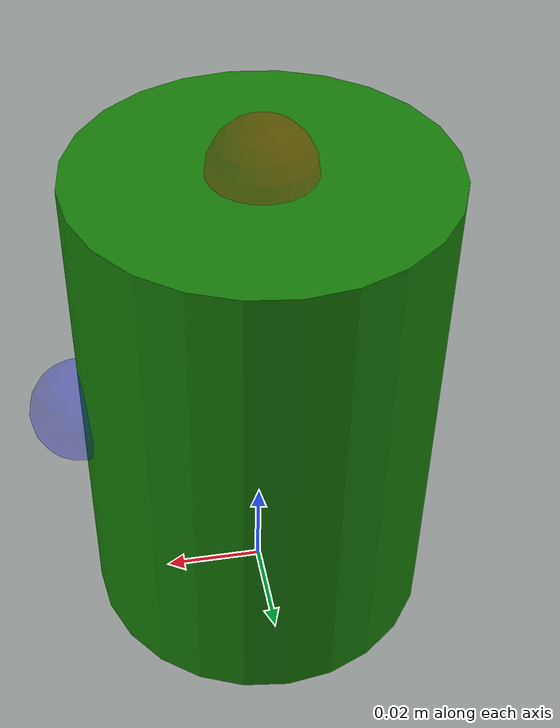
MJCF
<mujoco model="green_cup">
  <default>
    <default class="visual">
      <geom group="1" contype="0" conaffinity="0" density="100"/>
    </default>
    <default class="collision">
      <geom group="0" density="100" solimp="0.95 0.98 0.001" solref="0.004 1" rgba="1 1 1 0.25"/>
    </default>
    <default class="spawn">
      <geom group="1" rgba="1 1 1 0" contype="0" conaffinity="0" density="0" mass="0"/>
    </default>
  </default>
  <asset>
    <texture name="green_tex" builtin="flat" rgb1="0.3 0.7 0.2" rgb2="0.3 0.7 0.2" width="32" height="32"/>
    <material name="green_mat" texture="green_tex" shininess="0.3" reflectance="0.1" rgba="0.3 0.7 0.2 1"/>
  </asset>
  <worldbody>
    <body>
      <body name="object">
        <!-- Cup body: cylinder r=0.035m, h=0.10m -->
        <geom class="collision" name="cup_body" type="cylinder" size="0.035 0.05" pos="0 0 0.05"/>
        <geom class="visual" name="cup_body_vis" type="cylinder" size="0.035 0.05" pos="0 0 0.05" material="green_mat"/>
        <!-- Spawn zone on top -->
        <geom class="spawn" name="spawn_1" type="box" size="0.02 0.02 0.001" pos="0 0 0.10"/>
      </body>
      <site name="top_site" pos="0 0 0.10" size="0.01 0.01 0.01" rgba="1 0 0 0.3"/>
      <site name="bottom_site" pos="0 0 0" size="0.01 0.01 0.01" rgba="0 1 0 0.3"/>
      <site name="horizontal_radius_site" pos="0.035 0 0.05" size="0.01 0.01 0.01" rgba="0 0 1 0.3"/>
    </body>
  </worldbody>
</mujoco>
